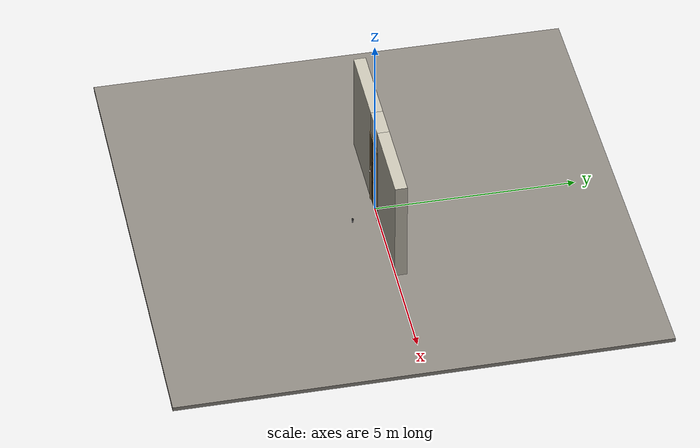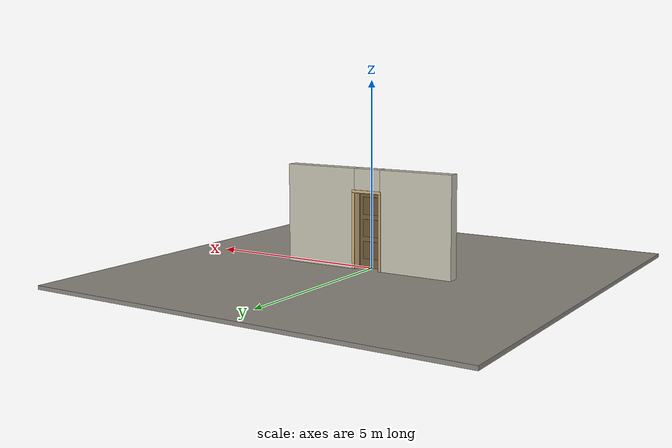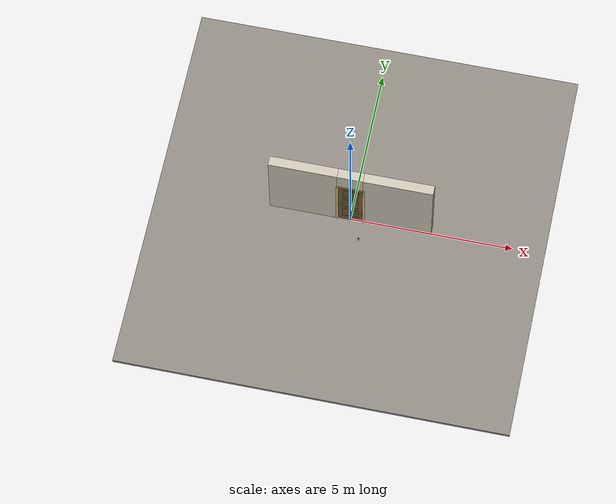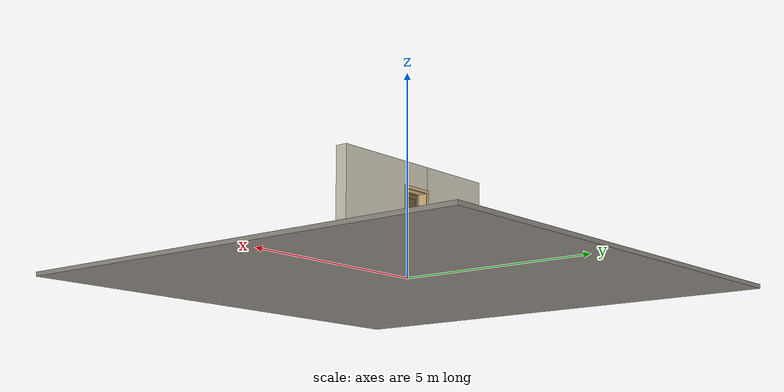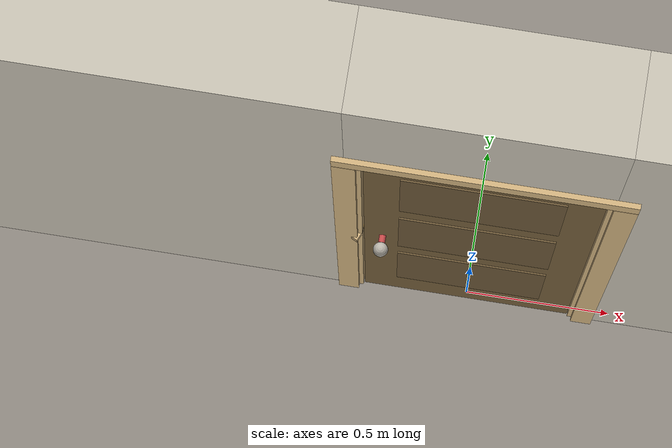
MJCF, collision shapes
<?xml version="1.0" ?>
<mujoco model="db0504_swing_single_full">
  <compiler angle="radian" meshdir="../../hardware" texturedir="../../textures" autolimits="true" inertiafromgeom="false"/>
  <option timestep="0.002" integrator="implicitfast" cone="elliptic" impratio="10" noslip_iterations="3">
    <flag multiccd="enable"/>
  </option>
  <size memory="16M"/>
  <default>
    <geom condim="4" solref="0.005 1" solimp="0.95 0.99 0.001"/>
    <joint solreflimit="0.005 1" solimplimit="0.95 0.99 0.001"/>
    <tendon solreflimit="0.005 1"/>
    <equality solref="0.002 1"/>
  </default>
  <visual>
    <headlight ambient="0.4 0.4 0.4" diffuse="0.7 0.7 0.7" specular="0.2 0.2 0.2"/>
    <quality shadowsize="4096"/>
    <map znear="0.01" zfar="60"/>
  </visual>
  <asset>
    <mesh name="hinge_2af0f4d6ca" file="hinge_2af0f4d6ca.obj"/>
    <mesh name="hinge_jamb_c0c0a62ada" file="hinge_jamb_c0c0a62ada.obj"/>
    <mesh name="knob_248d825e64" file="knob_248d825e64.obj"/>
    <mesh name="knob_d1888f6f03" file="knob_d1888f6f03.obj"/>
    <material name="mat_floor" rgba="0.55 0.53 0.5 1" specular="0.2" shininess="0.15" reflectance="0"/>
    <material name="mat_wall" rgba="0.78 0.76 0.7 1" specular="0.2" shininess="0.1" reflectance="0"/>
    <material name="mat_leaf" rgba="0.458 0.37 0.232 1" specular="0.2" shininess="0.5" reflectance="0"/>
    <material name="mat_leaf_panel" rgba="0.422 0.341 0.214 1" specular="0.2" shininess="0.5" reflectance="0"/>
    <material name="mat_hinge" rgba="0.65 0.66 0.68 1" specular="0.74" shininess="0.5" reflectance="0.36"/>
    <material name="mat_op_nickel_satin" rgba="0.72 0.7 0.66 1" specular="0.8" shininess="0.65" reflectance="0.4"/>
    <material name="mat_trim" rgba="0.85 0.66 0.3 1" specular="0.8" shininess="0.75" reflectance="0.4"/>
    <material name="mat_bolt" rgba="0.85 0.66 0.3 1" specular="0.8" shininess="0.75" reflectance="0.4"/>
    <material name="mat_frame" rgba="0.82 0.7 0.5 1" specular="0.2" shininess="0.45" reflectance="0"/>
    <material name="mat_bumper_stop" rgba="0.08 0.08 0.08 1" specular="0.2" shininess="0.1" reflectance="0"/>
    <material name="mat_stop_base" rgba="0.9 0.9 0.92 1" specular="0.8" shininess="0.9" reflectance="0.4"/>
    <texture name="skybox" type="skybox" builtin="gradient" rgb1="0.6 0.7 0.85" rgb2="0.9 0.92 0.95" width="256" height="256"/>
  </asset>
  <worldbody>
    <light name="sun" pos="1.5 -2.5 4" dir="-0.3 0.5 -0.8" directional="true" diffuse="0.8 0.8 0.8" specular="0.3 0.3 0.3" castshadow="true"/>
    <light name="fill" pos="-1.5 2.5 3" dir="0.3 -0.5 -0.7" directional="true" diffuse="0.35 0.35 0.4" castshadow="false"/>
    <camera name="robot_view" pos="0 -2.421187 1.734312" xyaxes="1 0 0 0 0.26963 0.962964" fovy="52"/>
    <camera name="far_view" pos="0 2.663187 1.734312" xyaxes="-1 0 0 0 -0.26963 0.962964" fovy="52"/>
    <camera name="iso" pos="-1.932062 -2.014438 2.141063" xyaxes="0.741536 -0.670913 0 0.242917 0.268487 0.932151" fovy="46"/>
    <camera name="detail_handle" pos="-0.1145 -0.8685 1.245" xyaxes="0.97561 0.219512 0 -0.070934 0.315262 0.94635" fovy="38"/>
    <geom name="floor" type="box" size="6 6 0.05" pos="0 0 -0.05" material="mat_floor" group="0" contype="1" conaffinity="1" friction="0.8 0.005 0.0001" density="2400"/>
    <geom name="wall_left" type="box" size="1.04575 0.15 1.35" pos="-1.45425 0.121 1.35" material="mat_wall" group="0" contype="1" conaffinity="1" friction="0.6 0.005 0.0001" density="800"/>
    <geom name="wall_right" type="box" size="1.06075 0.15 1.35" pos="1.43925 0.121 1.35" material="mat_wall" group="0" contype="1" conaffinity="1" friction="0.6 0.005 0.0001" density="800"/>
    <geom name="wall_header" type="box" size="0.3935 0.15 0.303" pos="-0.015 0.121 2.397" material="mat_wall" group="0" contype="1" conaffinity="1" friction="0.6 0.005 0.0001" density="800"/>
    <geom name="hinge_0_jamb" type="mesh" mesh="hinge_jamb_c0c0a62ada" pos="0.3565 -0.029 0.259" quat="0 0 1 0" material="mat_hinge" group="1" contype="0" conaffinity="0" density="7850"/>
    <geom name="hinge_1_jamb" type="mesh" mesh="hinge_jamb_c0c0a62ada" pos="0.3565 -0.029 1.025" quat="0 0 1 0" material="mat_hinge" group="1" contype="0" conaffinity="0" density="7850"/>
    <geom name="hinge_2_jamb" type="mesh" mesh="hinge_jamb_c0c0a62ada" pos="0.3565 -0.029 1.861" quat="0 0 1 0" material="mat_hinge" group="1" contype="0" conaffinity="0" density="7850"/>
    <geom name="jamb_hinge" type="box" size="0.0095 0.15 1.0225" pos="0.369 0.121 1.0225" material="mat_frame" group="0" contype="1" conaffinity="1" friction="0.6 0.005 0.0001" density="400"/>
    <geom name="strike_965_wall_n" type="box" size="0.0245 0.131575 0.0167" pos="-0.384 0.139425 0.965" material="mat_frame" group="0" contype="1" conaffinity="1" friction="0.6 0.005 0.0001" density="400"/>
    <geom name="strike_965_wall_p" type="box" size="0.0245 0.008 0.0167" pos="-0.384 -0.01585 0.965" material="mat_frame" group="0" contype="1" conaffinity="1" friction="0.6 0.005 0.0001" density="400"/>
    <geom name="strike_965_ramp" type="box" size="0.0245 0.01649 0.0167" pos="-0.388636 -0.028673 0.965" quat="0.977148 0 0 -0.212558" material="mat_frame" group="0" contype="1" conaffinity="1" friction="0.12 0.005 0.0001" density="400"/>
    <geom name="strike_965_back" type="box" size="0.01615 0.00785 0.0167" pos="-0.39235 0 0.965" material="mat_frame" group="0" contype="1" conaffinity="1" friction="0.6 0.005 0.0001" density="400"/>
    <geom name="jamb_strike_0" type="box" size="0.0245 0.15 0.47415" pos="-0.384 0.121 0.47415" material="mat_frame" group="0" contype="1" conaffinity="1" friction="0.6 0.005 0.0001" density="400"/>
    <geom name="jamb_strike_1" type="box" size="0.0245 0.15 0.53165" pos="-0.384 0.121 1.51335" material="mat_frame" group="0" contype="1" conaffinity="1" friction="0.6 0.005 0.0001" density="400"/>
    <geom name="jamb_head" type="box" size="0.3935 0.15 0.0095" pos="-0.015 0.121 2.0545" material="mat_frame" group="0" contype="1" conaffinity="1" friction="0.6 0.005 0.0001" density="400"/>
    <geom name="head_stud" type="box" size="0.3935 0.15 0.015" pos="-0.015 0.121 2.079" material="mat_wall" group="0" contype="1" conaffinity="1" friction="0.6 0.005 0.0001" density="500"/>
    <geom name="stop_hinge" type="box" size="0.0055 0.016 1.0225" pos="0.354 0.0385 1.0225" material="mat_frame" group="0" contype="1" conaffinity="1" friction="0.6 0.005 0.0001" density="400"/>
    <geom name="stop_strike" type="box" size="0.0055 0.016 1.0225" pos="-0.354 0.0385 1.0225" material="mat_frame" group="0" contype="1" conaffinity="1" friction="0.6 0.005 0.0001" density="400"/>
    <geom name="stop_head" type="box" size="0.3595 0.016 0.0055" pos="0 0.0385 2.0395" material="mat_frame" group="0" contype="1" conaffinity="1" friction="0.6 0.005 0.0001" density="400"/>
    <geom name="casing_l_n" type="box" size="0.035 0.008 1.032" pos="-0.4085 -0.037 1.0225" material="mat_frame" group="2" contype="0" conaffinity="0" density="400"/>
    <geom name="casing_r_n" type="box" size="0.035 0.008 1.032" pos="0.4085 -0.037 1.0225" material="mat_frame" group="2" contype="0" conaffinity="0" density="400"/>
    <geom name="casing_h_n" type="box" size="0.4435 0.008 0.035" pos="0 -0.037 2.094" material="mat_frame" group="2" contype="0" conaffinity="0" density="400"/>
    <geom name="casing_l_p" type="box" size="0.035 0.008 1.032" pos="-0.4085 0.279 1.0225" material="mat_frame" group="2" contype="0" conaffinity="0" density="400"/>
    <geom name="casing_r_p" type="box" size="0.035 0.008 1.032" pos="0.4085 0.279 1.0225" material="mat_frame" group="2" contype="0" conaffinity="0" density="400"/>
    <geom name="casing_h_p" type="box" size="0.4435 0.008 0.035" pos="0 0.279 2.094" material="mat_frame" group="2" contype="0" conaffinity="0" density="400"/>
    <geom name="door_stop_base" type="cylinder" size="0.022 0.003" pos="0.3725 -0.63335 0.003" material="mat_stop_base" group="0" contype="1" conaffinity="1" friction="0.6 0.005 0.0001" density="7850"/>
    <geom name="door_stop_post" type="cylinder" size="0.012 0.0245" pos="0.3725 -0.63335 0.0305" material="mat_stop_base" group="0" contype="1" conaffinity="1" friction="0.6 0.005 0.0001" density="7850"/>
    <geom name="door_stop_bumper" type="cylinder" size="0.022 0.02" pos="0.3725 -0.63335 0.075" material="mat_bumper_stop" group="0" contype="1" conaffinity="1" friction="0.6 0.005 0.0001" density="1100"/>
    <site name="approach_point" pos="0 -1.5 0" quat="1 0 0 0" size="0.05" rgba="0.2 0.9 0.2 0.5" group="4"/>
    <site name="goal_point" pos="0 1.5 0" quat="1 0 0 0" size="0.05" rgba="0.2 0.9 0.2 0.5" group="4"/>
    <site name="door_plane_center" pos="0 0 1.0225" quat="1 0 0 0" size="0.02" rgba="0.2 0.9 0.2 0.5" group="4"/>
    <body name="leaf" pos="0.3595 0 0">
      <inertial pos="-0.354944 -0.000159 1.025233" mass="44.642291" quat="0.500254 -0.499595 0.5004 0.499751" diaginertia="1.927273955 15.401924612 17.314493444"/>
      <joint name="leaf_hinge" type="hinge" axis="0 0 1" pos="-0.003 -0.029 0" limited="true" range="0 1.570796" damping="0.143782" frictionloss="0.546817" armature="0.02"/>
      <geom name="leaf_slab" type="box" size="0.3555 0.022 1.016" pos="-0.3585 0 1.025" material="mat_leaf" group="0" contype="1" conaffinity="1" friction="0.35 0.005 0.0001" density="1"/>
      <geom name="leaf_panel_0_n" type="box" size="0.2455 0.003 0.23448" pos="-0.3585 -0.025 0.487" material="mat_leaf_panel" group="1" contype="0" conaffinity="0" density="1"/>
      <geom name="leaf_panel_0_p" type="box" size="0.2455 0.003 0.23448" pos="-0.3585 0.025 0.487" material="mat_leaf_panel" group="1" contype="0" conaffinity="0" density="1"/>
      <geom name="leaf_panel_1_n" type="box" size="0.2455 0.003 0.23448" pos="-0.3585 -0.025 1.08596" material="mat_leaf_panel" group="1" contype="0" conaffinity="0" density="1"/>
      <geom name="leaf_panel_1_p" type="box" size="0.2455 0.003 0.23448" pos="-0.3585 0.025 1.08596" material="mat_leaf_panel" group="1" contype="0" conaffinity="0" density="1"/>
      <geom name="leaf_panel_2_n" type="box" size="0.2455 0.003 0.23448" pos="-0.3585 -0.025 1.68492" material="mat_leaf_panel" group="1" contype="0" conaffinity="0" density="1"/>
      <geom name="leaf_panel_2_p" type="box" size="0.2455 0.003 0.23448" pos="-0.3585 0.025 1.68492" material="mat_leaf_panel" group="1" contype="0" conaffinity="0" density="1"/>
      <geom name="hinge_0" type="mesh" mesh="hinge_2af0f4d6ca" pos="-0.003 -0.029 0.259" quat="0 0 1 0" material="mat_hinge" group="1" contype="0" conaffinity="0" density="7850"/>
      <geom name="hinge_1" type="mesh" mesh="hinge_2af0f4d6ca" pos="-0.003 -0.029 1.025" quat="0 0 1 0" material="mat_hinge" group="1" contype="0" conaffinity="0" density="7850"/>
      <geom name="hinge_2" type="mesh" mesh="hinge_2af0f4d6ca" pos="-0.003 -0.029 1.861" quat="0 0 1 0" material="mat_hinge" group="1" contype="0" conaffinity="0" density="7850"/>
      <geom name="leaf_latch_bolt_faceplate" type="box" size="0.0006 0.01235 0.0267" pos="-0.7134 0 0.965" material="mat_bolt" group="1" contype="0" conaffinity="0" density="8500"/>
      <site name="leaf_edge_mid" pos="-0.714 0 1.016" quat="1 0 0 0" size="0.02" rgba="0.2 0.9 0.2 0.5" group="4"/>
      <body name="leaf_handle" pos="-0.654 0 0.965">
        <inertial pos="0 -0.000225 0" mass="1.154652" quat="0.5 0.5 0.5 0.5" diaginertia="0.000312546 0.004289529 0.004289529"/>
        <joint name="leaf_handle_hinge" type="hinge" axis="0 1 0" limited="true" range="0 0.87" damping="0.143614" frictionloss="0.038" stiffness="0.5" springref="-0.5" armature="0.01"/>
        <geom name="leaf_handle_spindle" type="cylinder" size="0.006 0.03" pos="0 0 0" quat="0.707107 -0.707107 0 0" material="mat_op_nickel_satin" group="1" contype="0" conaffinity="0" density="7850"/>
        <geom name="leaf_handle_knob_n" type="mesh" mesh="knob_248d825e64" pos="0 -0.022 0" quat="0 0 -0.707107 0.707107" material="mat_op_nickel_satin" group="1" contype="0" conaffinity="0" density="3000"/>
        <geom name="leaf_handle_knob_col_n" type="sphere" size="0.0243" pos="0 -0.0685 0" material="mat_op_nickel_satin" group="0" contype="1" conaffinity="1" friction="0.9 0.01 0.0001" density="3000"/>
        <geom name="leaf_handle_knob_neck_n" type="cylinder" size="0.011 0.012" pos="0 -0.034 0" quat="0.707107 -0.707107 0 0" material="mat_op_nickel_satin" group="3" contype="1" conaffinity="1" rgba="0.8 0.3 0.3 0.25" friction="0.6 0.005 0.0001" density="3000"/>
        <geom name="leaf_handle_knob_p" type="mesh" mesh="knob_d1888f6f03" pos="0 0.022 0" quat="0 0 0.707107 0.707107" material="mat_op_nickel_satin" group="1" contype="0" conaffinity="0" density="3000"/>
        <geom name="leaf_handle_knob_col_p" type="sphere" size="0.0243" pos="0 0.0685 0" material="mat_op_nickel_satin" group="0" contype="1" conaffinity="1" friction="0.9 0.01 0.0001" density="3000"/>
        <geom name="leaf_handle_knob_neck_p" type="cylinder" size="0.011 0.012" pos="0 0.034 0" quat="0.707107 -0.707107 0 0" material="mat_op_nickel_satin" group="3" contype="1" conaffinity="1" rgba="0.8 0.3 0.3 0.25" friction="0.6 0.005 0.0001" density="3000"/>
        <site name="leaf_handle_grip_n" pos="0 -0.0685 0" quat="1 0 0 0" size="0.012" rgba="0.2 0.9 0.2 0.5" group="4"/>
        <site name="leaf_handle_grip_p" pos="0 0.0685 0" quat="1 0 0 0" size="0.012" rgba="0.2 0.9 0.2 0.5" group="4"/>
      </body>
      <body name="leaf_latch_bolt" pos="-0.714 0 0.965">
        <inertial pos="0.00865 0 0" mass="0.041419" quat="0.92388 0.382683 0 0" diaginertia="0.000000798 0.000005598 0.000005598"/>
        <joint name="leaf_latch_bolt_slide" type="slide" axis="1 0 0" limited="true" range="0 0.0127" damping="2" frictionloss="0.3" stiffness="300" springref="-0.008333" armature="0.1"/>
        <geom name="leaf_latch_bolt_capsule" type="capsule" size="0.00635 0.015" pos="0.00865 0 0" quat="0.707107 0 -0.707107 0" material="mat_bolt" group="0" contype="1" conaffinity="1" friction="0.2 0.005 0.0001" density="8500"/>
      </body>
    </body>
  </worldbody>
  <tendon>
    <fixed name="leaf_latch_bolt_coupling" limited="true" range="0 10">
      <joint joint="leaf_latch_bolt_slide" coef="1"/>
      <joint joint="leaf_handle_hinge" coef="-0.015679"/>
    </fixed>
  </tendon>
  <sensor>
    <jointpos name="leaf_hinge_pos" joint="leaf_hinge"/>
    <jointvel name="leaf_hinge_vel" joint="leaf_hinge"/>
    <jointpos name="leaf_handle_hinge_pos" joint="leaf_handle_hinge"/>
    <jointvel name="leaf_handle_hinge_vel" joint="leaf_handle_hinge"/>
    <jointpos name="leaf_latch_bolt_slide_pos" joint="leaf_latch_bolt_slide"/>
    <jointvel name="leaf_latch_bolt_slide_vel" joint="leaf_latch_bolt_slide"/>
  </sensor>
</mujoco>
